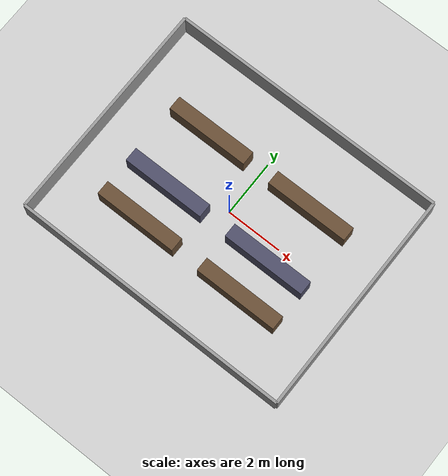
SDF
<?xml version="1.0" ?>
<sdf version="1.6">
  <world name="aislebot_warehouse">
    <!-- Physics -->
    <physics type="ode">
      <max_step_size>0.002</max_step_size>
      <real_time_factor>1.0</real_time_factor>
      <real_time_update_rate>500</real_time_update_rate>
    </physics>

    <!-- Lighting -->
    <include>
      <uri>model://sun</uri>
    </include>

    <!-- Ground plane -->
    <include>
      <uri>model://ground_plane</uri>
    </include>

    <!-- ===== WAREHOUSE WALLS ===== -->
    <!-- Outer walls (10m x 8m warehouse) -->
    <model name="wall_north">
      <static>true</static>
      <pose>5 0 0.5 0 0 0</pose>
      <link name="link">
        <collision name="collision">
          <geometry><box><size>0.1 8 1.0</size></box></geometry>
        </collision>
        <visual name="visual">
          <geometry><box><size>0.1 8 1.0</size></box></geometry>
          <material><ambient>0.6 0.6 0.6 1</ambient></material>
        </visual>
      </link>
    </model>

    <model name="wall_south">
      <static>true</static>
      <pose>-5 0 0.5 0 0 0</pose>
      <link name="link">
        <collision name="collision">
          <geometry><box><size>0.1 8 1.0</size></box></geometry>
        </collision>
        <visual name="visual">
          <geometry><box><size>0.1 8 1.0</size></box></geometry>
          <material><ambient>0.6 0.6 0.6 1</ambient></material>
        </visual>
      </link>
    </model>

    <model name="wall_east">
      <static>true</static>
      <pose>0 4 0.5 0 0 0</pose>
      <link name="link">
        <collision name="collision">
          <geometry><box><size>10 0.1 1.0</size></box></geometry>
        </collision>
        <visual name="visual">
          <geometry><box><size>10 0.1 1.0</size></box></geometry>
          <material><ambient>0.6 0.6 0.6 1</ambient></material>
        </visual>
      </link>
    </model>

    <model name="wall_west">
      <static>true</static>
      <pose>0 -4 0.5 0 0 0</pose>
      <link name="link">
        <collision name="collision">
          <geometry><box><size>10 0.1 1.0</size></box></geometry>
        </collision>
        <visual name="visual">
          <geometry><box><size>10 0.1 1.0</size></box></geometry>
          <material><ambient>0.6 0.6 0.6 1</ambient></material>
        </visual>
      </link>
    </model>

    <!-- ===== WAREHOUSE RACKS (forming narrow aisles) ===== -->
    <!-- Rack Row 1 -->
    <model name="rack_1a">
      <static>true</static>
      <pose>-2 -2 0.4 0 0 0</pose>
      <link name="link">
        <collision name="collision">
          <geometry><box><size>3.0 0.5 0.8</size></box></geometry>
        </collision>
        <visual name="visual">
          <geometry><box><size>3.0 0.5 0.8</size></box></geometry>
          <material><ambient>0.4 0.3 0.2 1</ambient></material>
        </visual>
      </link>
    </model>

    <model name="rack_1b">
      <static>true</static>
      <pose>2 -2 0.4 0 0 0</pose>
      <link name="link">
        <collision name="collision">
          <geometry><box><size>3.0 0.5 0.8</size></box></geometry>
        </collision>
        <visual name="visual">
          <geometry><box><size>3.0 0.5 0.8</size></box></geometry>
          <material><ambient>0.4 0.3 0.2 1</ambient></material>
        </visual>
      </link>
    </model>

    <!-- Rack Row 2 (creates 1.2m aisle between row 1 and row 2) -->
    <model name="rack_2a">
      <static>true</static>
      <pose>-2 -0.6 0.4 0 0 0</pose>
      <link name="link">
        <collision name="collision">
          <geometry><box><size>3.0 0.5 0.8</size></box></geometry>
        </collision>
        <visual name="visual">
          <geometry><box><size>3.0 0.5 0.8</size></box></geometry>
          <material><ambient>0.3 0.3 0.4 1</ambient></material>
        </visual>
      </link>
    </model>

    <model name="rack_2b">
      <static>true</static>
      <pose>2 -0.6 0.4 0 0 0</pose>
      <link name="link">
        <collision name="collision">
          <geometry><box><size>3.0 0.5 0.8</size></box></geometry>
        </collision>
        <visual name="visual">
          <geometry><box><size>3.0 0.5 0.8</size></box></geometry>
          <material><ambient>0.3 0.3 0.4 1</ambient></material>
        </visual>
      </link>
    </model>

    <!-- Rack Row 3 -->
    <model name="rack_3a">
      <static>true</static>
      <pose>-2 1.6 0.4 0 0 0</pose>
      <link name="link">
        <collision name="collision">
          <geometry><box><size>3.0 0.5 0.8</size></box></geometry>
        </collision>
        <visual name="visual">
          <geometry><box><size>3.0 0.5 0.8</size></box></geometry>
          <material><ambient>0.4 0.3 0.2 1</ambient></material>
        </visual>
      </link>
    </model>

    <model name="rack_3b">
      <static>true</static>
      <pose>2 1.6 0.4 0 0 0</pose>
      <link name="link">
        <collision name="collision">
          <geometry><box><size>3.0 0.5 0.8</size></box></geometry>
        </collision>
        <visual name="visual">
          <geometry><box><size>3.0 0.5 0.8</size></box></geometry>
          <material><ambient>0.4 0.3 0.2 1</ambient></material>
        </visual>
      </link>
    </model>

    <!-- Camera for viewing -->
    <gui fullscreen='0'>
      <camera name='user_camera'>
        <pose>0 -12 8 0 0.6 1.57</pose>
        <view_controller>orbit</view_controller>
      </camera>
    </gui>

  </world>
</sdf>
